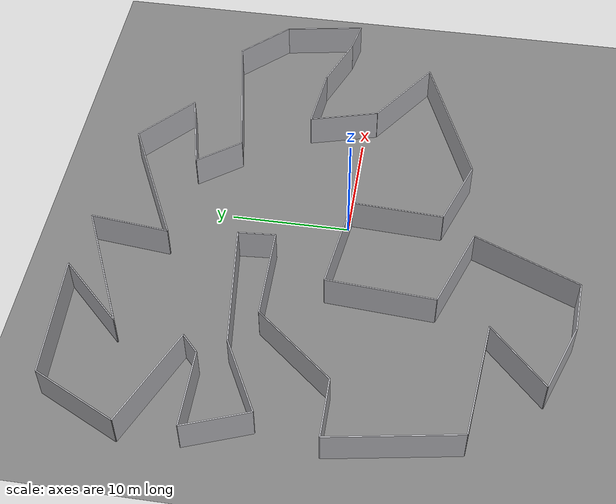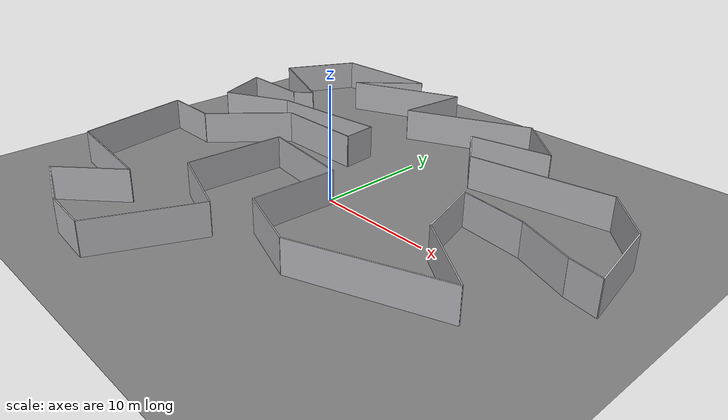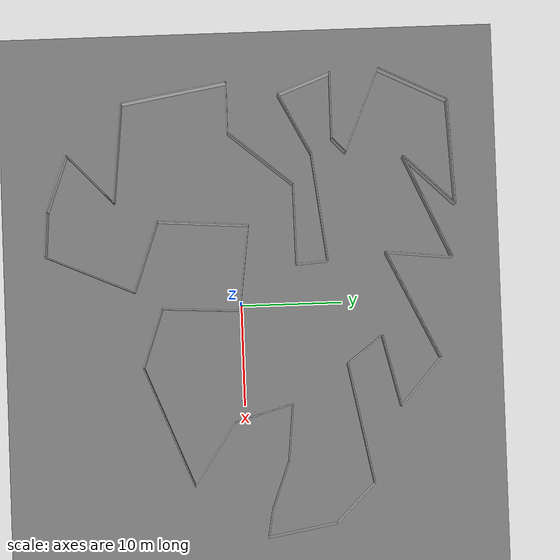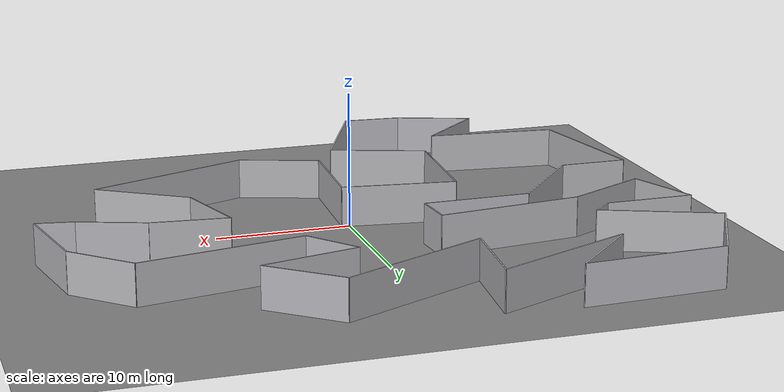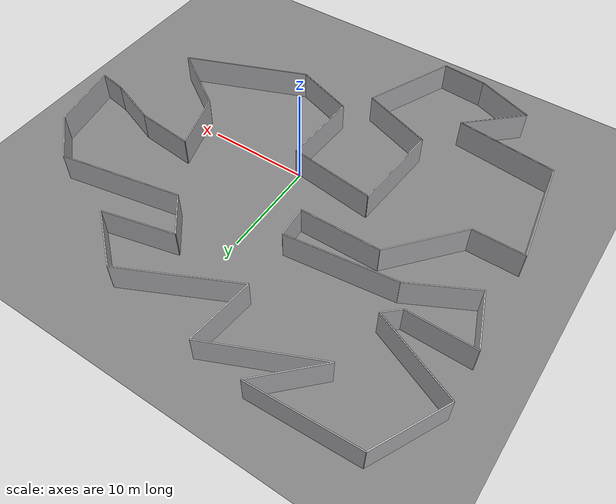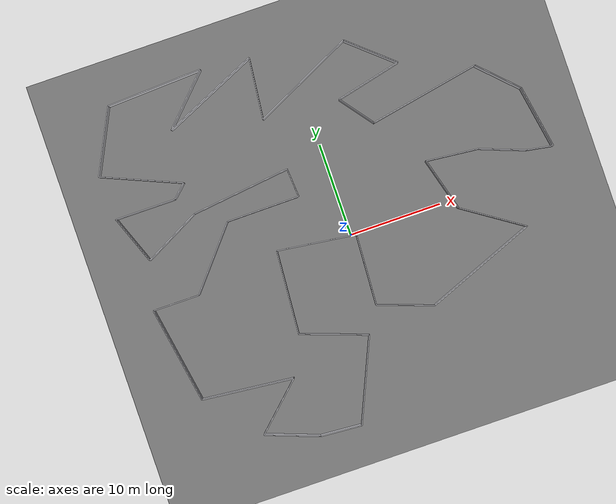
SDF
<?xml version='1.0'?>
<sdf version='1.9'>
  <world name='poly9_world'>
    <physics name='default_physics' type='ode'>
      <max_step_size>0.001</max_step_size>
      <real_time_factor>4.0</real_time_factor>
    </physics>
    <plugin filename='ignition-gazebo-physics-system' name='gz::sim::systems::Physics'/>
    <plugin filename='ignition-gazebo-scene-broadcaster-system' name='gz::sim::systems::SceneBroadcaster'/>
    <plugin filename='ignition-gazebo-user-commands-system' name='gz::sim::systems::UserCommands'/>
    <plugin filename='ignition-gazebo-contact-system' name='gz::sim::systems::Contact'/>

    <light type='directional' name='sun'>
      <cast_shadows>true</cast_shadows>
      <pose>0 0 10 0 0 0</pose>
      <diffuse>0.8 0.8 0.8 1</diffuse>
      <direction>-0.5 0.1 -0.9</direction>
    </light>

    <model name='ground_plane'>
      <static>true</static>
      <link name='link'>
        <collision name='collision'>
          <geometry><plane><normal>0 0 1</normal><size>56.24 50.90</size></plane></geometry>
        </collision>
        <visual name='visual'>
          <geometry><plane><normal>0 0 1</normal><size>56.24 50.90</size></plane></geometry>
          <material><ambient>0.5 0.5 0.5 1</ambient></material>
        </visual>
      </link>
    </model>

    <!-- Walls extruded from poly9 (39 vertices), scale=0.05 m/unit -->
    <model name='wall_0'>
      <static>true</static>
      <pose>-9.2129 18.8035 1.5000 0 0 0.421058</pose>
      <link name='link'>
        <collision name='collision'>
          <geometry><box><size>11.1784 0.1000 3.0000</size></box></geometry>
        </collision>
        <visual name='visual'>
          <geometry><box><size>11.1784 0.1000 3.0000</size></box></geometry>
          <material>
            <ambient>0.7 0.7 0.72 1</ambient>
            <diffuse>0.75 0.75 0.77 1</diffuse>
          </material>
        </visual>
      </link>
    </model>
    <model name='wall_1'>
      <static>true</static>
      <pose>-4.4675 17.7792 1.5000 0 0 -1.677875</pose>
      <link name='link'>
        <collision name='collision'>
          <geometry><box><size>6.6556 0.1000 3.0000</size></box></geometry>
        </collision>
        <visual name='visual'>
          <geometry><box><size>6.6556 0.1000 3.0000</size></box></geometry>
          <material>
            <ambient>0.7 0.7 0.72 1</ambient>
            <diffuse>0.75 0.75 0.77 1</diffuse>
          </material>
        </visual>
      </link>
    </model>
    <model name='wall_2'>
      <static>true</static>
      <pose>0.5170 17.0378 1.5000 0 0 0.448147</pose>
      <link name='link'>
        <collision name='collision'>
          <geometry><box><size>11.8505 0.1000 3.0000</size></box></geometry>
        </collision>
        <visual name='visual'>
          <geometry><box><size>11.8505 0.1000 3.0000</size></box></geometry>
          <material>
            <ambient>0.7 0.7 0.72 1</ambient>
            <diffuse>0.75 0.75 0.77 1</diffuse>
          </material>
        </visual>
      </link>
    </model>
    <model name='wall_3'>
      <static>true</static>
      <pose>8.1932 17.5777 1.5000 0 0 -0.714814</pose>
      <link name='link'>
        <collision name='collision'>
          <geometry><box><size>6.1866 0.1000 3.0000</size></box></geometry>
        </collision>
        <visual name='visual'>
          <geometry><box><size>6.1866 0.1000 3.0000</size></box></geometry>
          <material>
            <ambient>0.7 0.7 0.72 1</ambient>
            <diffuse>0.75 0.75 0.77 1</diffuse>
          </material>
        </visual>
      </link>
    </model>
    <model name='wall_4'>
      <static>true</static>
      <pose>6.9760 14.7077 1.5000 0 0 -2.908825</pose>
      <link name='link'>
        <collision name='collision'>
          <geometry><box><size>7.3034 0.1000 3.0000</size></box></geometry>
        </collision>
        <visual name='visual'>
          <geometry><box><size>7.3034 0.1000 3.0000</size></box></geometry>
          <material>
            <ambient>0.7 0.7 0.72 1</ambient>
            <diffuse>0.75 0.75 0.77 1</diffuse>
          </material>
        </visual>
      </link>
    </model>
    <model name='wall_5'>
      <static>true</static>
      <pose>4.7698 12.1082 1.5000 0 0 -0.916777</pose>
      <link name='link'>
        <collision name='collision'>
          <geometry><box><size>4.4282 0.1000 3.0000</size></box></geometry>
        </collision>
        <visual name='visual'>
          <geometry><box><size>4.4282 0.1000 3.0000</size></box></geometry>
          <material>
            <ambient>0.7 0.7 0.72 1</ambient>
            <diffuse>0.75 0.75 0.77 1</diffuse>
          </material>
        </visual>
      </link>
    </model>
    <model name='wall_6'>
      <static>true</static>
      <pose>12.0976 11.4903 1.5000 0 0 0.188244</pose>
      <link name='link'>
        <collision name='collision'>
          <geometry><box><size>12.1765 0.1000 3.0000</size></box></geometry>
        </collision>
        <visual name='visual'>
          <geometry><box><size>12.1765 0.1000 3.0000</size></box></geometry>
          <material>
            <ambient>0.7 0.7 0.72 1</ambient>
            <diffuse>0.75 0.75 0.77 1</diffuse>
          </material>
        </visual>
      </link>
    </model>
    <model name='wall_7'>
      <static>true</static>
      <pose>19.9984 10.7095 1.5000 0 0 -0.785398</pose>
      <link name='link'>
        <collision name='collision'>
          <geometry><box><size>5.4309 0.1000 3.0000</size></box></geometry>
        </collision>
        <visual name='visual'>
          <geometry><box><size>5.4309 0.1000 3.0000</size></box></geometry>
          <material>
            <ambient>0.7 0.7 0.72 1</ambient>
            <diffuse>0.75 0.75 0.77 1</diffuse>
          </material>
        </visual>
      </link>
    </model>
    <model name='wall_8'>
      <static>true</static>
      <pose>22.5222 5.3686 1.5000 0 0 -1.396115</pose>
      <link name='link'>
        <collision name='collision'>
          <geometry><box><size>6.9473 0.1000 3.0000</size></box></geometry>
        </collision>
        <visual name='visual'>
          <geometry><box><size>6.9473 0.1000 3.0000</size></box></geometry>
          <material>
            <ambient>0.7 0.7 0.72 1</ambient>
            <diffuse>0.75 0.75 0.77 1</diffuse>
          </material>
        </visual>
      </link>
    </model>
    <model name='wall_9'>
      <static>true</static>
      <pose>21.7540 2.1843 1.5000 0 0 2.970930</pose>
      <link name='link'>
        <collision name='collision'>
          <geometry><box><size>2.7843 0.1000 3.0000</size></box></geometry>
        </collision>
        <visual name='visual'>
          <geometry><box><size>2.7843 0.1000 3.0000</size></box></geometry>
          <material>
            <ambient>0.7 0.7 0.72 1</ambient>
            <diffuse>0.75 0.75 0.77 1</diffuse>
          </material>
        </visual>
      </link>
    </model>
    <model name='wall_10'>
      <static>true</static>
      <pose>17.9968 3.3109 1.5000 0 0 2.784392</pose>
      <link name='link'>
        <collision name='collision'>
          <geometry><box><size>5.0920 0.1000 3.0000</size></box></geometry>
        </collision>
        <visual name='visual'>
          <geometry><box><size>5.0920 0.1000 3.0000</size></box></geometry>
          <material>
            <ambient>0.7 0.7 0.72 1</ambient>
            <diffuse>0.75 0.75 0.77 1</diffuse>
          </material>
        </visual>
      </link>
    </model>
    <model name='wall_11'>
      <static>true</static>
      <pose>12.7908 4.4862 1.5000 0 0 3.040873</pose>
      <link name='link'>
        <collision name='collision'>
          <geometry><box><size>5.6703 0.1000 3.0000</size></box></geometry>
        </collision>
        <visual name='visual'>
          <geometry><box><size>5.6703 0.1000 3.0000</size></box></geometry>
          <material>
            <ambient>0.7 0.7 0.72 1</ambient>
            <diffuse>0.75 0.75 0.77 1</diffuse>
          </material>
        </visual>
      </link>
    </model>
    <model name='wall_12'>
      <static>true</static>
      <pose>10.7863 1.8836 1.5000 0 0 -1.295303</pose>
      <link name='link'>
        <collision name='collision'>
          <geometry><box><size>6.0015 0.1000 3.0000</size></box></geometry>
        </collision>
        <visual name='visual'>
          <geometry><box><size>6.0015 0.1000 3.0000</size></box></geometry>
          <material>
            <ambient>0.7 0.7 0.72 1</ambient>
            <diffuse>0.75 0.75 0.77 1</diffuse>
          </material>
        </visual>
      </link>
    </model>
    <model name='wall_13'>
      <static>true</static>
      <pose>14.7095 -3.0887 1.5000 0 0 -0.590982</pose>
      <link name='link'>
        <collision name='collision'>
          <geometry><box><size>7.4832 0.1000 3.0000</size></box></geometry>
        </collision>
        <visual name='visual'>
          <geometry><box><size>7.4832 0.1000 3.0000</size></box></geometry>
          <material>
            <ambient>0.7 0.7 0.72 1</ambient>
            <diffuse>0.75 0.75 0.77 1</diffuse>
          </material>
        </visual>
      </link>
    </model>
    <model name='wall_14'>
      <static>true</static>
      <pose>11.8780 -7.5410 1.5000 0 0 -2.762223</pose>
      <link name='link'>
        <collision name='collision'>
          <geometry><box><size>12.7862 0.1000 3.0000</size></box></geometry>
        </collision>
        <visual name='visual'>
          <geometry><box><size>12.7862 0.1000 3.0000</size></box></geometry>
          <material>
            <ambient>0.7 0.7 0.72 1</ambient>
            <diffuse>0.75 0.75 0.77 1</diffuse>
          </material>
        </visual>
      </link>
    </model>
    <model name='wall_15'>
      <static>true</static>
      <pose>3.0215 -8.8971 1.5000 0 0 2.807906</pose>
      <link name='link'>
        <collision name='collision'>
          <geometry><box><size>6.1766 0.1000 3.0000</size></box></geometry>
        </collision>
        <visual name='visual'>
          <geometry><box><size>6.1766 0.1000 3.0000</size></box></geometry>
          <material>
            <ambient>0.7 0.7 0.72 1</ambient>
            <diffuse>0.75 0.75 0.77 1</diffuse>
          </material>
        </visual>
      </link>
    </model>
    <model name='wall_16'>
      <static>true</static>
      <pose>0.3156 -4.0318 1.5000 0 0 1.515817</pose>
      <link name='link'>
        <collision name='collision'>
          <geometry><box><size>7.7192 0.1000 3.0000</size></box></geometry>
        </collision>
        <visual name='visual'>
          <geometry><box><size>7.7192 0.1000 3.0000</size></box></geometry>
          <material>
            <ambient>0.7 0.7 0.72 1</ambient>
            <diffuse>0.75 0.75 0.77 1</diffuse>
          </material>
        </visual>
      </link>
    </model>
    <model name='wall_17'>
      <static>true</static>
      <pose>-3.7074 0.3715 1.5000 0 0 3.012571</pose>
      <link name='link'>
        <collision name='collision'>
          <geometry><box><size>8.5413 0.1000 3.0000</size></box></geometry>
        </collision>
        <visual name='visual'>
          <geometry><box><size>8.5413 0.1000 3.0000</size></box></geometry>
          <material>
            <ambient>0.7 0.7 0.72 1</ambient>
            <diffuse>0.75 0.75 0.77 1</diffuse>
          </material>
        </visual>
      </link>
    </model>
    <model name='wall_18'>
      <static>true</static>
      <pose>-8.2702 -3.5989 1.5000 0 0 -1.643156</pose>
      <link name='link'>
        <collision name='collision'>
          <geometry><box><size>9.0635 0.1000 3.0000</size></box></geometry>
        </collision>
        <visual name='visual'>
          <geometry><box><size>9.0635 0.1000 3.0000</size></box></geometry>
          <material>
            <ambient>0.7 0.7 0.72 1</ambient>
            <diffuse>0.75 0.75 0.77 1</diffuse>
          </material>
        </visual>
      </link>
    </model>
    <model name='wall_19'>
      <static>true</static>
      <pose>-5.1031 -9.3566 1.5000 0 0 -0.340379</pose>
      <link name='link'>
        <collision name='collision'>
          <geometry><box><size>7.4149 0.1000 3.0000</size></box></geometry>
        </collision>
        <visual name='visual'>
          <geometry><box><size>7.4149 0.1000 3.0000</size></box></geometry>
          <material>
            <ambient>0.7 0.7 0.72 1</ambient>
            <diffuse>0.75 0.75 0.77 1</diffuse>
          </material>
        </visual>
      </link>
    </model>
    <model name='wall_20'>
      <static>true</static>
      <pose>-3.5189 -14.9612 1.5000 0 0 -1.983207</pose>
      <link name='link'>
        <collision name='collision'>
          <geometry><box><size>9.5331 0.1000 3.0000</size></box></geometry>
        </collision>
        <visual name='visual'>
          <geometry><box><size>9.5331 0.1000 3.0000</size></box></geometry>
          <material>
            <ambient>0.7 0.7 0.72 1</ambient>
            <diffuse>0.75 0.75 0.77 1</diffuse>
          </material>
        </visual>
      </link>
    </model>
    <model name='wall_21'>
      <static>true</static>
      <pose>-7.6551 -19.1720 1.5000 0 0 3.071577</pose>
      <link name='link'>
        <collision name='collision'>
          <geometry><box><size>4.4623 0.1000 3.0000</size></box></geometry>
        </collision>
        <visual name='visual'>
          <geometry><box><size>4.4623 0.1000 3.0000</size></box></geometry>
          <material>
            <ambient>0.7 0.7 0.72 1</ambient>
            <diffuse>0.75 0.75 0.77 1</diffuse>
          </material>
        </visual>
      </link>
    </model>
    <model name='wall_22'>
      <static>true</static>
      <pose>-12.6806 -17.9865 1.5000 0 0 2.789256</pose>
      <link name='link'>
        <collision name='collision'>
          <geometry><box><size>5.9662 0.1000 3.0000</size></box></geometry>
        </collision>
        <visual name='visual'>
          <geometry><box><size>5.9662 0.1000 3.0000</size></box></geometry>
          <material>
            <ambient>0.7 0.7 0.72 1</ambient>
            <diffuse>0.75 0.75 0.77 1</diffuse>
          </material>
        </visual>
      </link>
    </model>
    <model name='wall_23'>
      <static>true</static>
      <pose>-13.0381 -14.6524 1.5000 0 0 0.756391</pose>
      <link name='link'>
        <collision name='collision'>
          <geometry><box><size>6.7160 0.1000 3.0000</size></box></geometry>
        </collision>
        <visual name='visual'>
          <geometry><box><size>6.7160 0.1000 3.0000</size></box></geometry>
          <material>
            <ambient>0.7 0.7 0.72 1</ambient>
            <diffuse>0.75 0.75 0.77 1</diffuse>
          </material>
        </visual>
      </link>
    </model>
    <model name='wall_24'>
      <static>true</static>
      <pose>-15.5267 -11.8446 1.5000 0 0 3.039897</pose>
      <link name='link'>
        <collision name='collision'>
          <geometry><box><size>9.9131 0.1000 3.0000</size></box></geometry>
        </collision>
        <visual name='visual'>
          <geometry><box><size>9.9131 0.1000 3.0000</size></box></geometry>
          <material>
            <ambient>0.7 0.7 0.72 1</ambient>
            <diffuse>0.75 0.75 0.77 1</diffuse>
          </material>
        </visual>
      </link>
    </model>
    <model name='wall_25'>
      <static>true</static>
      <pose>-21.3526 -6.0885 1.5000 0 0 1.739558</pose>
      <link name='link'>
        <collision name='collision'>
          <geometry><box><size>10.6573 0.1000 3.0000</size></box></geometry>
        </collision>
        <visual name='visual'>
          <geometry><box><size>10.6573 0.1000 3.0000</size></box></geometry>
          <material>
            <ambient>0.7 0.7 0.72 1</ambient>
            <diffuse>0.75 0.75 0.77 1</diffuse>
          </material>
        </visual>
      </link>
    </model>
    <model name='wall_26'>
      <static>true</static>
      <pose>-19.7285 -0.8355 1.5000 0 0 0.000000</pose>
      <link name='link'>
        <collision name='collision'>
          <geometry><box><size>5.0384 0.1000 3.0000</size></box></geometry>
        </collision>
        <visual name='visual'>
          <geometry><box><size>5.0384 0.1000 3.0000</size></box></geometry>
          <material>
            <ambient>0.7 0.7 0.72 1</ambient>
            <diffuse>0.75 0.75 0.77 1</diffuse>
          </material>
        </visual>
      </link>
    </model>
    <model name='wall_27'>
      <static>true</static>
      <pose>-14.5315 2.3421 1.5000 0 0 0.870560</pose>
      <link name='link'>
        <collision name='collision'>
          <geometry><box><size>8.3108 0.1000 3.0000</size></box></geometry>
        </collision>
        <visual name='visual'>
          <geometry><box><size>8.3108 0.1000 3.0000</size></box></geometry>
          <material>
            <ambient>0.7 0.7 0.72 1</ambient>
            <diffuse>0.75 0.75 0.77 1</diffuse>
          </material>
        </visual>
      </link>
    </model>
    <model name='wall_28'>
      <static>true</static>
      <pose>-7.8824 5.5543 1.5000 0 0 0.008704</pose>
      <link name='link'>
        <collision name='collision'>
          <geometry><box><size>7.9432 0.1000 3.0000</size></box></geometry>
        </collision>
        <visual name='visual'>
          <geometry><box><size>7.9432 0.1000 3.0000</size></box></geometry>
          <material>
            <ambient>0.7 0.7 0.72 1</ambient>
            <diffuse>0.75 0.75 0.77 1</diffuse>
          </material>
        </visual>
      </link>
    </model>
    <model name='wall_29'>
      <static>true</static>
      <pose>-4.0206 7.1500 1.5000 0 0 1.640926</pose>
      <link name='link'>
        <collision name='collision'>
          <geometry><box><size>3.1301 0.1000 3.0000</size></box></geometry>
        </collision>
        <visual name='visual'>
          <geometry><box><size>3.1301 0.1000 3.0000</size></box></geometry>
          <material>
            <ambient>0.7 0.7 0.72 1</ambient>
            <diffuse>0.75 0.75 0.77 1</diffuse>
          </material>
        </visual>
      </link>
    </model>
    <model name='wall_30'>
      <static>true</static>
      <pose>-9.4977 8.0656 1.5000 0 0 -3.021881</pose>
      <link name='link'>
        <collision name='collision'>
          <geometry><box><size>10.8123 0.1000 3.0000</size></box></geometry>
        </collision>
        <visual name='visual'>
          <geometry><box><size>10.8123 0.1000 3.0000</size></box></geometry>
          <material>
            <ambient>0.7 0.7 0.72 1</ambient>
            <diffuse>0.75 0.75 0.77 1</diffuse>
          </material>
        </visual>
      </link>
    </model>
    <model name='wall_31'>
      <static>true</static>
      <pose>-17.8748 5.8581 1.5000 0 0 -2.662891</pose>
      <link name='link'>
        <collision name='collision'>
          <geometry><box><size>6.7815 0.1000 3.0000</size></box></geometry>
        </collision>
        <visual name='visual'>
          <geometry><box><size>6.7815 0.1000 3.0000</size></box></geometry>
          <material>
            <ambient>0.7 0.7 0.72 1</ambient>
            <diffuse>0.75 0.75 0.77 1</diffuse>
          </material>
        </visual>
      </link>
    </model>
    <model name='wall_32'>
      <static>true</static>
      <pose>-21.8755 6.9089 1.5000 0 0 1.933344</pose>
      <link name='link'>
        <collision name='collision'>
          <geometry><box><size>5.5886 0.1000 3.0000</size></box></geometry>
        </collision>
        <visual name='visual'>
          <geometry><box><size>5.5886 0.1000 3.0000</size></box></geometry>
          <material>
            <ambient>0.7 0.7 0.72 1</ambient>
            <diffuse>0.75 0.75 0.77 1</diffuse>
          </material>
        </visual>
      </link>
    </model>
    <model name='wall_33'>
      <static>true</static>
      <pose>-19.5933 9.5215 1.5000 0 0 0.000000</pose>
      <link name='link'>
        <collision name='collision'>
          <geometry><box><size>6.5464 0.1000 3.0000</size></box></geometry>
        </collision>
        <visual name='visual'>
          <geometry><box><size>6.5464 0.1000 3.0000</size></box></geometry>
          <material>
            <ambient>0.7 0.7 0.72 1</ambient>
            <diffuse>0.75 0.75 0.77 1</diffuse>
          </material>
        </visual>
      </link>
    </model>
    <model name='wall_34'>
      <static>true</static>
      <pose>-15.6031 10.1890 1.5000 0 0 0.749663</pose>
      <link name='link'>
        <collision name='collision'>
          <geometry><box><size>1.9591 0.1000 3.0000</size></box></geometry>
        </collision>
        <visual name='visual'>
          <geometry><box><size>1.9591 0.1000 3.0000</size></box></geometry>
          <material>
            <ambient>0.7 0.7 0.72 1</ambient>
            <diffuse>0.75 0.75 0.77 1</diffuse>
          </material>
        </visual>
      </link>
    </model>
    <model name='wall_35'>
      <static>true</static>
      <pose>-19.0004 12.5998 1.5000 0 0 2.740789</pose>
      <link name='link'>
        <collision name='collision'>
          <geometry><box><size>8.9369 0.1000 3.0000</size></box></geometry>
        </collision>
        <visual name='visual'>
          <geometry><box><size>8.9369 0.1000 3.0000</size></box></geometry>
          <material>
            <ambient>0.7 0.7 0.72 1</ambient>
            <diffuse>0.75 0.75 0.77 1</diffuse>
          </material>
        </visual>
      </link>
    </model>
    <model name='wall_36'>
      <static>true</static>
      <pose>-21.4504 17.7116 1.5000 0 0 1.111870</pose>
      <link name='link'>
        <collision name='collision'>
          <geometry><box><size>7.5141 0.1000 3.0000</size></box></geometry>
        </collision>
        <visual name='visual'>
          <geometry><box><size>7.5141 0.1000 3.0000</size></box></geometry>
          <material>
            <ambient>0.7 0.7 0.72 1</ambient>
            <diffuse>0.75 0.75 0.77 1</diffuse>
          </material>
        </visual>
      </link>
    </model>
    <model name='wall_37'>
      <static>true</static>
      <pose>-14.5828 21.3276 1.5000 0 0 0.047575</pose>
      <link name='link'>
        <collision name='collision'>
          <geometry><box><size>10.4183 0.1000 3.0000</size></box></geometry>
        </collision>
        <visual name='visual'>
          <geometry><box><size>10.4183 0.1000 3.0000</size></box></geometry>
          <material>
            <ambient>0.7 0.7 0.72 1</ambient>
            <diffuse>0.75 0.75 0.77 1</diffuse>
          </material>
        </visual>
      </link>
    </model>
    <model name='wall_38'>
      <static>true</static>
      <pose>-11.8467 19.0472 1.5000 0 0 -2.343987</pose>
      <link name='link'>
        <collision name='collision'>
          <geometry><box><size>7.0650 0.1000 3.0000</size></box></geometry>
        </collision>
        <visual name='visual'>
          <geometry><box><size>7.0650 0.1000 3.0000</size></box></geometry>
          <material>
            <ambient>0.7 0.7 0.72 1</ambient>
            <diffuse>0.75 0.75 0.77 1</diffuse>
          </material>
        </visual>
      </link>
    </model>

  </world>
</sdf>
